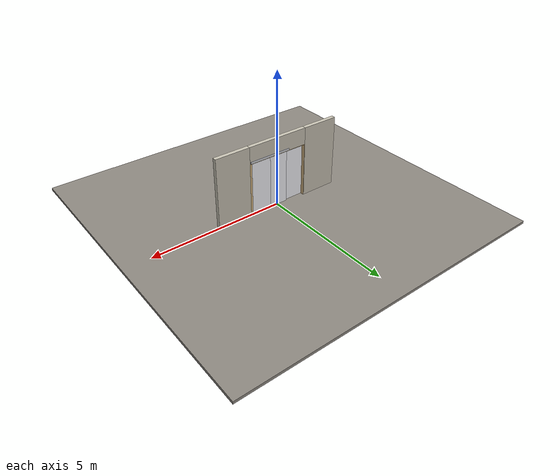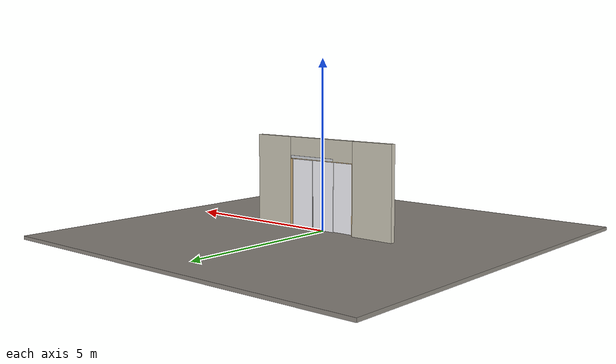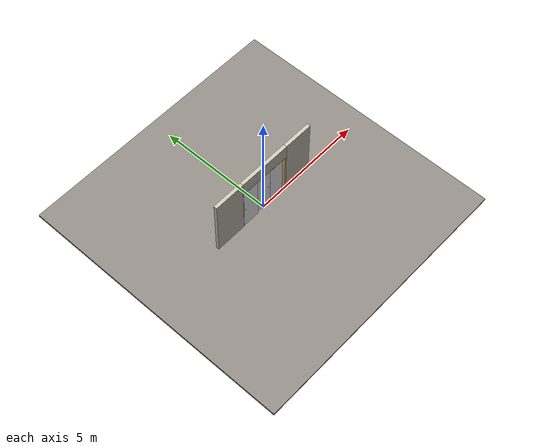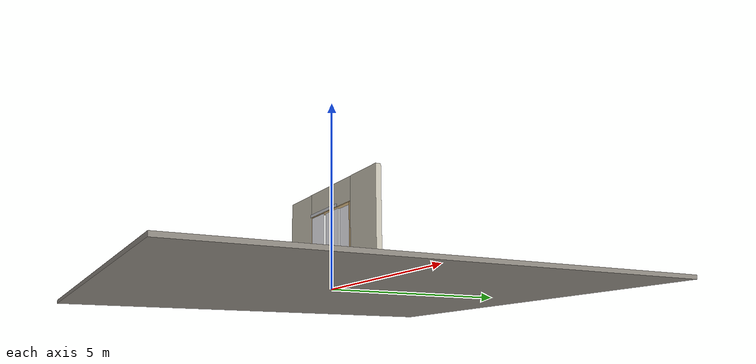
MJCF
<?xml version="1.0" ?>
<mujoco model="db0382_sliding_bypass_simple">
  <compiler angle="radian" meshdir="../../hardware" texturedir="../../textures" autolimits="true" inertiafromgeom="false"/>
  <option timestep="0.002" integrator="implicitfast" cone="elliptic" impratio="10" noslip_iterations="3">
    <flag multiccd="enable"/>
  </option>
  <size memory="16M"/>
  <default>
    <geom condim="4" solref="0.005 1" solimp="0.95 0.99 0.001"/>
    <joint solreflimit="0.005 1" solimplimit="0.95 0.99 0.001"/>
    <tendon solreflimit="0.005 1"/>
    <equality solref="0.002 1"/>
  </default>
  <visual>
    <headlight ambient="0.4 0.4 0.4" diffuse="0.7 0.7 0.7" specular="0.2 0.2 0.2"/>
    <quality shadowsize="4096"/>
    <map znear="0.01" zfar="60"/>
  </visual>
  <asset>
    <material name="mat_floor" rgba="0.55 0.53 0.5 1" specular="0.2" shininess="0.15" reflectance="0"/>
    <material name="mat_wall" rgba="0.78 0.76 0.7 1" specular="0.2" shininess="0.1" reflectance="0"/>
    <material name="mat_frame" rgba="0.82 0.7 0.5 1" specular="0.2" shininess="0.45" reflectance="0"/>
    <material name="mat_track" rgba="0.8 0.81 0.83 1" specular="0.8" shininess="0.6" reflectance="0.4"/>
    <material name="mat_leaf_0" rgba="0.95 0.95 0.97 1" specular="0.8" shininess="1" reflectance="0.4"/>
    <material name="mat_glass_leaf" rgba="0.95 0.95 0.97 1" specular="0.8" shininess="1" reflectance="0.4"/>
    <material name="mat_patch" rgba="0.75 0.76 0.77 1" specular="0.8" shininess="0.65" reflectance="0.4"/>
    <material name="mat_roller" rgba="0.65 0.66 0.68 1" specular="0.74" shininess="0.5" reflectance="0.36"/>
    <material name="mat_op_nickel_satin" rgba="0.72 0.7 0.66 1" specular="0.8" shininess="0.65" reflectance="0.4"/>
    <material name="mat_leaf_1" rgba="0.95 0.95 0.97 1" specular="0.8" shininess="1" reflectance="0.4"/>
    <material name="mat_leaf_2" rgba="0.95 0.95 0.97 1" specular="0.8" shininess="1" reflectance="0.4"/>
    <material name="mat_hook" rgba="0.75 0.76 0.77 1" specular="0.8" shininess="0.65" reflectance="0.4"/>
    <texture name="skybox" type="skybox" builtin="gradient" rgb1="0.6 0.7 0.85" rgb2="0.9 0.92 0.95" width="256" height="256"/>
  </asset>
  <worldbody>
    <light name="sun" pos="1.5 -2.5 4" dir="-0.3 0.5 -0.8" directional="true" diffuse="0.8 0.8 0.8" specular="0.3 0.3 0.3" castshadow="true"/>
    <light name="fill" pos="-1.5 2.5 3" dir="0.3 -0.5 -0.7" directional="true" diffuse="0.35 0.35 0.4" castshadow="false"/>
    <camera name="robot_view" pos="0 -2.72125 1.78795" xyaxes="1 0 0 0 0.26963 0.962964" fovy="52"/>
    <camera name="far_view" pos="0 2.72125 1.78795" xyaxes="-1 0 0 0 -0.26963 0.962964" fovy="52"/>
    <camera name="iso" pos="2.06815 -2.28585 2.22335" xyaxes="0.741536 0.670913 0 -0.242917 0.268487 0.932151" fovy="46"/>
    <camera name="detail_handle" pos="-0.845 -0.859 1.28" xyaxes="0.97561 0.219512 0 -0.070934 0.315262 0.94635" fovy="38"/>
    <geom name="floor" type="box" size="6 6 0.05" pos="0 0 -0.05" material="mat_floor" group="0" contype="1" conaffinity="1" friction="0.8 0.005 0.0001" density="2400"/>
    <geom name="wall_left" type="box" size="0.6815 0.0725 1.35" pos="-1.8185 0 1.35" material="mat_wall" group="0" contype="1" conaffinity="1" friction="0.6 0.005 0.0001" density="800"/>
    <geom name="wall_right" type="box" size="0.6515 0.0725 1.35" pos="1.8485 0 1.35" material="mat_wall" group="0" contype="1" conaffinity="1" friction="0.6 0.005 0.0001" density="800"/>
    <geom name="wall_header" type="box" size="1.167 0.0725 0.3145" pos="0.03 0 2.3855" material="mat_wall" group="0" contype="1" conaffinity="1" friction="0.6 0.005 0.0001" density="800"/>
    <geom name="jamb_l" type="box" size="0.0095 0.0725 1.026" pos="-1.1275 0 1.026" material="mat_frame" group="0" contype="1" conaffinity="1" friction="0.6 0.005 0.0001" density="300"/>
    <geom name="jamb_head" type="box" size="1.137 0.0725 0.0095" pos="0 0 2.0615" material="mat_frame" group="0" contype="1" conaffinity="1" friction="0.6 0.005 0.0001" density="300"/>
    <geom name="leaf_0_track_header" type="box" size="0.797 0.025 0.04" pos="-0.368 -0.056 2.111" material="mat_track" group="0" contype="1" conaffinity="1" friction="0.6 0.005 0.0001" density="2700"/>
    <geom name="leaf_1_track_header" type="box" size="1.163 0.025 0.04" pos="0 0 2.111" material="mat_track" group="0" contype="1" conaffinity="1" friction="0.6 0.005 0.0001" density="2700"/>
    <geom name="leaf_2_track_header" type="box" size="0.797 0.025 0.04" pos="0.368 0.056 2.111" material="mat_track" group="0" contype="1" conaffinity="1" friction="0.6 0.005 0.0001" density="2700"/>
    <geom name="jamb_latch_0" type="box" size="0.0395 0.0725 1.026" pos="1.1575 0 1.026" material="mat_frame" group="0" contype="1" conaffinity="1" friction="0.6 0.005 0.0001" density="300"/>
    <site name="approach_point" pos="0 -1.5 0" quat="1 0 0 0" size="0.05" rgba="0.2 0.9 0.2 0.5" group="4"/>
    <site name="goal_point" pos="0 1.5 0" quat="1 0 0 0" size="0.05" rgba="0.2 0.9 0.2 0.5" group="4"/>
    <site name="door_plane_center" pos="0 0 1.026" quat="1 0 0 0" size="0.02" rgba="0.2 0.9 0.2 0.5" group="4"/>
    <body name="leaf_0" pos="-0.734 -0.056 0">
      <inertial pos="-0.000038 0 1.027996" mass="23.242427" quat="0.5 0.499998 0.500002 -0.5" diaginertia="1.124811638 7.996409549 9.121081676"/>
      <joint name="leaf_0_slide" type="slide" axis="1 0 0" limited="true" range="0 1.448" damping="3.163788" frictionloss="5.478174" armature="0.5"/>
      <geom name="leaf_0_glass" type="box" size="0.381 0.003 1.016" pos="0 0 1.028" material="mat_glass_leaf" group="0" contype="1" conaffinity="1" friction="0.4 0.005 0.0001" density="1"/>
      <geom name="leaf_0_pull_n" type="box" size="0.0275 0.0005 0.0275" pos="-0.291 -0.0035 1" material="mat_op_nickel_satin" group="1" contype="0" conaffinity="0" density="1000"/>
      <site name="leaf_0_pull_grip_n" pos="-0.291 -0.003 1" quat="1 0 0 0" size="0.012" rgba="0.2 0.9 0.2 0.5" group="4"/>
      <site name="leaf_0_edge_mid" pos="-0.381 0 1.028" quat="1 0 0 0" size="0.02" rgba="0.2 0.9 0.2 0.5" group="4"/>
    </body>
    <body name="leaf_1" pos="0 0 0">
      <inertial pos="0.000038 0 1.027996" mass="23.242427" quat="0.5 0.500002 0.499998 -0.5" diaginertia="1.124811638 7.996409549 9.121081676"/>
      <joint name="leaf_1_slide" type="slide" axis="-1 0 0" limited="true" range="0 0.714" damping="3.163788" frictionloss="5.478174" armature="0.5"/>
      <geom name="leaf_1_glass" type="box" size="0.381 0.003 1.016" pos="0 0 1.028" material="mat_glass_leaf" group="0" contype="1" conaffinity="1" friction="0.4 0.005 0.0001" density="1"/>
      <geom name="leaf_1_pull_n" type="box" size="0.0275 0.0005 0.0275" pos="0.291 -0.0035 1" material="mat_op_nickel_satin" group="1" contype="0" conaffinity="0" density="1000"/>
      <site name="leaf_1_pull_grip_n" pos="0.291 -0.003 1" quat="1 0 0 0" size="0.012" rgba="0.2 0.9 0.2 0.5" group="4"/>
      <site name="leaf_1_edge_mid" pos="0.381 0 1.028" quat="1 0 0 0" size="0.02" rgba="0.2 0.9 0.2 0.5" group="4"/>
    </body>
    <body name="leaf_2" pos="0.734 0.056 0">
      <inertial pos="-0.000038 0 1.027996" mass="23.242427" quat="0.5 0.499998 0.500002 -0.5" diaginertia="1.124811638 7.996409549 9.121081676"/>
      <joint name="leaf_2_slide" type="slide" axis="-1 0 0" limited="true" range="0 1.448" damping="3.163788" frictionloss="5.478174" armature="0.5"/>
      <geom name="leaf_2_glass" type="box" size="0.381 0.003 1.016" pos="0 0 1.028" material="mat_glass_leaf" group="0" contype="1" conaffinity="1" friction="0.4 0.005 0.0001" density="1"/>
      <geom name="leaf_2_pull_n" type="box" size="0.0275 0.0005 0.0275" pos="-0.291 -0.0035 1" material="mat_op_nickel_satin" group="1" contype="0" conaffinity="0" density="1000"/>
      <site name="leaf_2_pull_grip_n" pos="-0.291 -0.003 1" quat="1 0 0 0" size="0.012" rgba="0.2 0.9 0.2 0.5" group="4"/>
      <site name="leaf_2_edge_mid" pos="-0.381 0 1.028" quat="1 0 0 0" size="0.02" rgba="0.2 0.9 0.2 0.5" group="4"/>
    </body>
  </worldbody>
  <sensor>
    <jointpos name="leaf_0_slide_pos" joint="leaf_0_slide"/>
    <jointvel name="leaf_0_slide_vel" joint="leaf_0_slide"/>
    <jointpos name="leaf_1_slide_pos" joint="leaf_1_slide"/>
    <jointvel name="leaf_1_slide_vel" joint="leaf_1_slide"/>
    <jointpos name="leaf_2_slide_pos" joint="leaf_2_slide"/>
    <jointvel name="leaf_2_slide_vel" joint="leaf_2_slide"/>
  </sensor>
</mujoco>
